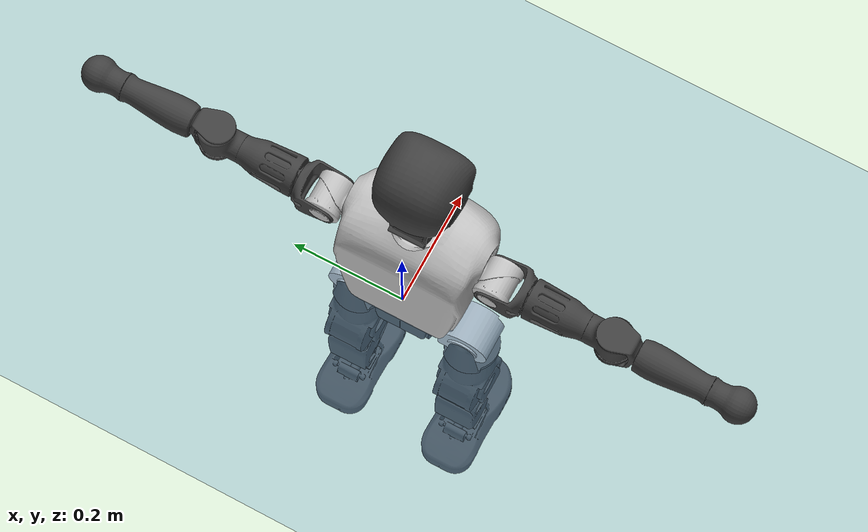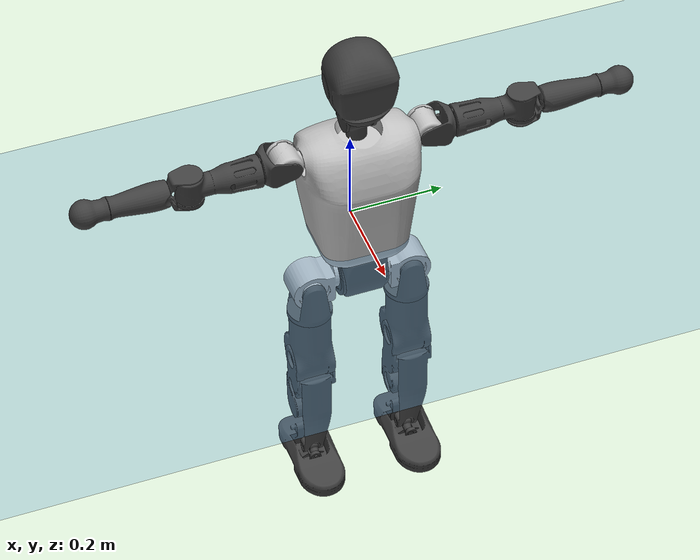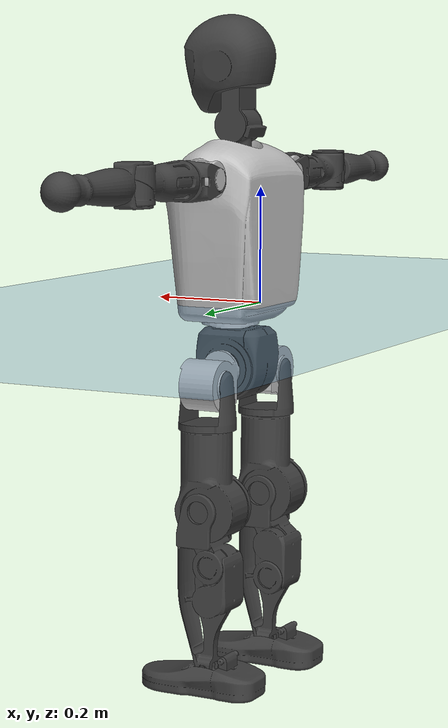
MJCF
<mujoco model="T1">
  <compiler angle="radian" assetdir="assets" balanceinertia="true" inertiafromgeom="false"/>

  <option timestep="0.005" density="1.2" viscosity="2e-05"/>

  <size nkey="1"/>

  <visual>
    <quality shadowsize="8192"/>
    <map shadowclip="0.5"/>
  </visual>

  <default>
    <default class="/">
      <joint armature="0.01" damping="0.01" frictionloss="0.1"/>
      <geom contype="0" conaffinity="0" group="1" solref="-1000 -80"/>
      <site size="0.01 0.005 0.005" group="5"/>
      <general forcelimited="true" biastype="affine" gainprm="25" biasprm="0 -25 -0.6"/>
      <default class="t1">
        <geom rgba="0.25 0.25 0.25 1"/>
        <default class="visual">
          <geom type="mesh" group="2"/>
        </default>
        <default class="collision">
          <geom group="3"/>
        </default>
        <default class="foot">
          <geom size="0.1115 0.05 0.015" type="box" condim="6" group="4" priority="1" solimp="0.015 1 0.015"/>
        </default>
        <default class="reward_collision_sphere">
          <geom group="5" rgba="1 0 0 1"/>
        </default>
      </default>
    </default>
  </default>

  <asset>
    <texture type="skybox" colorspace="auto" name="//unnamed_texture_0" builtin="gradient" rgb1="0.95 0.95 0.95" rgb2="0.95 0.95 0.95" width="100" height="600"/>
    <texture type="2d" colorspace="auto" name="texplane" builtin="checker" rgb1="0.345 0.575 0.748" rgb2="0.345 0.575 0.748" markrgb="1 1 1" width="512" height="512"/>
    <material name="MatPlane" class="/" texture="texplane" texuniform="true" texrepeat="2 2" specular="0.9"/>
    <mesh name="Trunk" class="/" file="Trunk.stl"/>
    <mesh name="H1" class="/" file="H1.stl"/>
    <mesh name="H2" class="/" file="H2.stl"/>
    <mesh name="AL1" class="/" file="AL1.stl"/>
    <mesh name="AL2" class="/" file="AL2.stl"/>
    <mesh name="AL3" class="/" file="AL3.stl"/>
    <mesh name="left_hand_link" class="/" file="left_hand_link.stl"/>
    <mesh name="AR1" class="/" file="AR1.stl"/>
    <mesh name="AR2" class="/" file="AR2.stl"/>
    <mesh name="AR3" class="/" file="AR3.stl"/>
    <mesh name="right_hand_link" class="/" file="right_hand_link.stl"/>
    <mesh name="Waist" class="/" file="Waist.stl"/>
    <mesh name="Hip_Pitch_Left" class="/" file="Hip_Pitch_Left.stl"/>
    <mesh name="Hip_Roll_Left" class="/" file="Hip_Roll_Left.stl"/>
    <mesh name="Hip_Yaw_Left" class="/" file="Hip_Yaw_Left.stl"/>
    <mesh name="Shank_Left" class="/" file="Shank_Left.stl"/>
    <mesh name="Ankle_Cross_Left" class="/" file="Ankle_Cross_Left.stl"/>
    <mesh name="left_foot_link" class="/" file="left_foot_link.stl"/>
    <mesh name="Hip_Pitch_Right" class="/" file="Hip_Pitch_Right.stl"/>
    <mesh name="Hip_Roll_Right" class="/" file="Hip_Roll_Right.stl"/>
    <mesh name="Hip_Yaw_Right" class="/" file="Hip_Yaw_Right.stl"/>
    <mesh name="Shank_Right" class="/" file="Shank_Right.stl"/>
    <mesh name="Ankle_Cross_Right" class="/" file="Ankle_Cross_Right.stl"/>
    <mesh name="right_foot_link" class="/" file="right_foot_link.stl"/>
  </asset>

  <worldbody>
    <geom name="floor" class="/" size="100 100 0.125" type="plane" group="0" material="MatPlane"/>
    <light name="toplight_shadow" class="/" pos="0 0 5" dir="0.0990148 0.0990148 -0.990148" type="directional" ambient="0.04 0.04 0.04" diffuse="0.55 0.55 0.55" specular="0.12 0.12 0.12"/>
    <light name="toplight_fill" class="/" pos="0 0 5" dir="0.0990148 0.0990148 -0.990148" type="directional" castshadow="false" ambient="0.04 0.04 0.04" diffuse="0.3 0.3 0.3" specular="0.08 0.08 0.08"/>
    <body name="trunk" childclass="t1" pos="-0.00238157 -0.00244774 0.00277517" quat="0.999999 0.00049326 -0.00103122 0.000831823">
      <inertial pos="0.0381318 -0.00269234 0.106432" quat="0.999961 0.000143851 -0.00885923 8.61126e-05" mass="8.41617" diaginertia="0.0168693 0.0746423 0.0533808"/>
      <joint name="//unnamed_joint_0" type="free" armature="0" damping="0" frictionloss="0"/>
      <geom name="//unnamed_geom_1" class="visual" rgba="0.76 0.76 0.76 1" mesh="Trunk"/>
      <geom name="//unnamed_geom_2" class="collision" size="0.0670429 0.0893905 0.134086" pos="0.0424808 0 0.118617" type="box"/>
      <geom name="//unnamed_geom_3" class="reward_collision_sphere" size="0.102799" pos="0.0424808 0 0.0988477"/>
      <geom name="//unnamed_geom_4" class="reward_collision_sphere" size="0.0134086" pos="0.0424808 0.0837439 0"/>
      <geom name="//unnamed_geom_5" class="reward_collision_sphere" size="0.0134086" pos="0.0424808 -0.0837439 0"/>
      <geom name="//unnamed_geom_6" class="reward_collision_sphere" size="0.0134086" pos="0.0424808 0.105419 0.177926"/>
      <geom name="//unnamed_geom_7" class="reward_collision_sphere" size="0.0134086" pos="0.0424808 -0.105419 0.177926"/>
      <site name="imu" pos="-0.0141562 -0.00934552 -0.00454284" size="0.00893905"/>
      <camera name="track" pos="0 -1.97045 0" quat="0.707107 0.707107 0 0" mode="trackcom"/>
      <camera name="ego_camera" pos="0.0863777 0 0.41516" quat="-0.5 -0.5 0.5 0.5"/>
      <body name="H1" pos="0.0450005 0.000356122 0.240823" quat="0.999999 -0.000348775 0.00121116 -0.000361163">
        <inertial pos="0.00146938 -0.00212155 0.0595787" quat="0.763997 -0.0160151 0.00159416 0.645019" mass="0.323972" diaginertia="4.33249e-05 0.000216491 0.000137679"/>
        <joint name="AAHead_yaw" pos="0 0 0" axis="0.0085709 0.00121919 0.999963" range="-1.62731 1.56557" armature="0.0102367" damping="0.00823687" frictionloss="0.0771167"/>
        <geom name="//unnamed_geom_8" class="visual" mesh="H1"/>
        <body name="H2" pos="0.00181613 2.76359e-05 0.061725" quat="1 0.000302346 -0.000256527 3.70307e-06">
          <inertial pos="0.0043096 -7.06359e-05 0.0970151" quat="0.988691 0.105679 -0.073238 -0.077188" mass="0.437094" diaginertia="0.000346141 0.00171726 0.00157887"/>
          <joint name="Head_pitch" pos="0 0 0" axis="-0.0116739 -0.999918 0.00519896" range="-1.21959 0.403343" armature="0.00902328" damping="0.0113527" frictionloss="0.0796371"/>
          <geom name="//unnamed_geom_9" class="visual" mesh="H2"/>
          <geom name="//unnamed_geom_10" class="collision" size="0.0715124" pos="0.00708014 0 0.108733"/>
          <geom name="//unnamed_geom_11" class="reward_collision_sphere" size="0.0804514" pos="0.0141603 0 0.0988477"/>
        </body>
      </body>
      <body name="AL1" pos="0.0391512 0.103319 0.216676" quat="1 -0.000118844 -0.000124104 -0.000505696">
        <inertial pos="-0.000990146 0.0453314 -0.00114061" quat="0.50885 0.497143 -0.503784 0.490023" mass="0.37852" diaginertia="0.000245916 0.00121749 0.000276961"/>
        <joint name="Left_Shoulder_Pitch" pos="0 0 0" axis="0.00244982 0.999947 0.010049" stiffness="0.0150397" range="-3.30056 1.17458" armature="0.00840009" damping="0.0121801" frictionloss="0.0872793"/>
        <geom name="//unnamed_geom_12" class="visual" rgba="0.76 0.76 0.76 1" mesh="AL1"/>
        <body name="AL2" pos="0.000273271 0.0448002 -0.00247185" quat="1 -2.32119e-05 5.68819e-05 4.52246e-05">
          <inertial pos="0.0010032 0.0368604 -8.82134e-05" quat="0.487486 0.512579 -0.488625 0.510751" mass="0.113165" diaginertia="7.11911e-05 0.000311096 0.000165334"/>
          <joint name="Left_Shoulder_Roll" pos="0 0 0" axis="-0.999977 0.00673555 -0.000787512" stiffness="0.00201347" range="-1.53786 1.71306" armature="0.00781461" damping="0.00449108" frictionloss="0.0974189"/>
          <geom name="//unnamed_geom_13" class="visual" mesh="AL2"/>
          <body name="AL3" pos="0.00321569 0.0604809 0.00146064" quat="1 0.000601134 0.000196893 -1.41447e-05">
            <inertial pos="-0.000397737 0.0817936 -0.00226135" quat="0.702387 0.711678 0.0080969 0.0100729" mass="0.706472" diaginertia="0.00219747 0.0117815 0.000560018"/>
            <joint name="Left_Elbow_Pitch" pos="0 0 0" axis="-0.00141356 -0.999922 -0.0124315" range="-2.26354 2.2479" armature="0.0097025" damping="0.00236376" frictionloss="0.101088"/>
            <geom name="//unnamed_geom_14" class="visual" mesh="AL3"/>
            <geom name="//unnamed_geom_15" class="collision" size="0.0268171 0.0670429" pos="0 0.0492611 0" quat="0.707105 0.707108 0 0" type="cylinder"/>
            <geom name="//unnamed_geom_16" class="reward_collision_sphere" size="0.0321806"/>
            <body name="left_hand_link" pos="0.0031423 0.144683 -0.000486393" quat="0.999999 -0.00138889 -0.000206213 -4.23182e-05">
              <inertial pos="0.000309817 0.107875 -0.00193758" quat="0.706067 0.708143 -0.00130211 0.000424421" mass="0.241333" diaginertia="0.0014957 0.00754853 0.000204114"/>
              <joint name="Left_Elbow_Yaw" pos="0 0 0" axis="-0.0178611 0.00343877 0.999835" stiffness="0.0107435" range="-2.4477 -0.0130567" armature="0.0083252" damping="0.00892421" frictionloss="0.101991"/>
              <geom name="//unnamed_geom_17" class="visual" mesh="left_hand_link"/>
              <geom name="//unnamed_geom_18" class="collision" size="0.0268171 0.0782167" pos="0 0.128079 0" quat="0.707105 0.707108 0 0" type="cylinder"/>
              <geom name="//unnamed_geom_19" class="reward_collision_sphere" size="0.0446952"/>
              <geom name="//unnamed_geom_20" class="reward_collision_sphere" size="0.0312867" pos="0 0.108374 0"/>
              <geom name="//unnamed_geom_21" class="reward_collision_sphere" size="0.0312867" pos="0 0.211823 0"/>
            </body>
          </body>
        </body>
      </body>
      <body name="AR1" pos="0.0392384 -0.101269 0.216704" quat="0.999999 0.000452236 -0.000220209 -0.000947279">
        <inertial pos="-0.00208329 -0.0461254 0.00157249" quat="0.501696 0.499215 -0.5036 0.495452" mass="0.37934" diaginertia="0.000237246 0.00121691 0.000287404"/>
        <joint name="Right_Shoulder_Pitch" pos="0 0 0" axis="-0.0017612 -0.999997 -0.00180574" stiffness="0.00563216" range="-1.2544 3.31365" armature="0.0076664" damping="0.0158904" frictionloss="0.09187"/>
        <geom name="//unnamed_geom_22" class="visual" rgba="0.76 0.76 0.76 1" mesh="AR1"/>
        <body name="AR2" pos="-0.000349342 -0.0431367 -0.000948738" quat="1 6.02695e-05 0.000242912 -0.000119896">
          <inertial pos="0.00191471 -0.0373772 -0.0012048" quat="0.504622 0.49815 -0.514583 0.482086" mass="0.120232" diaginertia="7.00306e-05 0.000320519 0.000164975"/>
          <joint name="Right_Shoulder_Roll" pos="0 0 0" axis="-1 0.000480252 -0.000710131" stiffness="0.00416529" range="-1.76846 1.60947" armature="0.0089489" damping="0" frictionloss="0.0905494"/>
          <geom name="//unnamed_geom_23" class="visual" mesh="AR2"/>
          <body name="AR3" pos="0.00243461 -0.059036 -0.00367955" quat="1 0.000117594 -0.00028285 0.000255379">
            <inertial pos="0.00176103 -0.0869132 0.0002194" quat="0.706517 0.707696 0.000451042 0.000398758" mass="0.736807" diaginertia="0.00233202 0.0125874 0.000621437"/>
            <joint name="Right_Elbow_Pitch" pos="0 0 0" axis="-0.000848376 0.999949 -0.0100407" range="-2.28246 2.26162" armature="0.00960813" damping="0.00930693" frictionloss="0.0817423"/>
            <geom name="//unnamed_geom_24" class="visual" mesh="AR3"/>
            <geom name="//unnamed_geom_25" class="collision" size="0.0268171 0.0670429" pos="0 -0.0492611 0" quat="0.707105 0.707108 0 0" type="cylinder"/>
            <geom name="//unnamed_geom_26" class="reward_collision_sphere" size="0.0321806"/>
            <body name="right_hand_link" pos="-0.000885158 -0.145549 0.000259499" quat="0.999999 0.000772524 -0.00112823 -0.00031772">
              <inertial pos="-0.00118366 -0.106619 -0.000191211" quat="0.703105 0.711082 0.00235336 0.00060553" mass="0.235154" diaginertia="0.00142726 0.00755524 0.00021104"/>
              <joint name="Right_Elbow_Yaw" pos="0 0 0" axis="-0.00223734 0.00961551 0.999951" range="-0.0331568 2.4579" armature="0.00878273" damping="0" frictionloss="0.0955505"/>
              <geom name="//unnamed_geom_27" class="visual" mesh="right_hand_link"/>
              <geom name="//unnamed_geom_28" class="collision" size="0.0268171 0.0782167" pos="0 -0.128079 0" quat="0.707105 0.707108 0 0" type="cylinder"/>
              <geom name="//unnamed_geom_29" class="reward_collision_sphere" size="0.0446952"/>
              <geom name="//unnamed_geom_30" class="reward_collision_sphere" size="0.0312867" pos="0 -0.108374 0"/>
              <geom name="//unnamed_geom_31" class="reward_collision_sphere" size="0.0312867" pos="0 -0.211823 0"/>
            </body>
          </body>
        </body>
      </body>
      <body name="Waist" pos="0.0479732 0.00095724 -0.114106" quat="0.999999 0.00100396 -0.000497801 0.000103564">
        <inertial pos="0.00216583 -0.00122118 0.0100805" quat="0.983641 0.00335557 -0.179382 0.0161916" mass="1.77765" diaginertia="0.000925593 0.0049742 0.00444713"/>
        <joint name="Waist" pos="0 0 0" axis="-0.0113326 0.00384509 0.999928" stiffness="0.00338487" range="-1.57454 1.59013" armature="0.00991403" damping="0.0180585" frictionloss="0.0794868"/>
        <geom name="//unnamed_geom_32" class="visual" mesh="Waist"/>
        <body name="Hip_Pitch_Left" pos="0.00336011 0.10557 -0.0025823" quat="0.999999 0.00106822 0.000418038 0.000696463">
          <inertial pos="0.00150723 -0.00478769 -0.0197624" quat="0.976059 0.216884 0.0164092 -0.000250005" mass="0.75184" diaginertia="0.000315899 0.00134662 0.0012118"/>
          <joint name="Left_Hip_Pitch" pos="0 0 0" axis="-0.0158784 0.999855 0.0061139" stiffness="0.00482001" range="-1.80866 1.60657" armature="0.00939132" damping="0.00296303" frictionloss="0.0890879"/>
          <geom name="//unnamed_geom_33" class="visual" rgba="0.76 0.76 0.76 1" mesh="Hip_Pitch_Left"/>
          <body name="Hip_Roll_Left" pos="0.000751424 0.00102052 -0.018502" quat="1 -0.00049073 -0.000374441 -0.00026106">
            <inertial pos="-0.00182456 0.00234119 -0.0527346" quat="0.714611 3.28301e-06 -0.0119199 0.699421" mass="0.280203" diaginertia="0.000313351 0.0013617 0.000483659"/>
            <joint name="Left_Hip_Roll" pos="0 0 0" axis="-0.999954 -0.00628932 -0.00717555" range="-1.55778 0.252556" armature="0.00836344" damping="0.0127346" frictionloss="0.0771639"/>
            <geom name="//unnamed_geom_34" class="visual" mesh="Hip_Roll_Left"/>
            <geom name="//unnamed_geom_35" class="reward_collision_sphere" size="0.0491648"/>
            <body name="Hip_Yaw_Left" pos="-0.00173138 0.00182771 -0.0790737" quat="1 -0.000434446 -3.51807e-05 0.000346734">
              <inertial pos="-0.00535759 -0.000498932 -0.0879033" quat="0.692715 -0.0317943 -0.0331222 0.719749" mass="1.44884" diaginertia="0.00442157 0.0226805 0.00230188"/>
              <joint name="Left_Hip_Yaw" pos="0 0 0" axis="0.00510748 -0.00645633 -0.999966" range="-0.951249 0.956087" armature="0.00926951" damping="0.0170189" frictionloss="0.0873598"/>
              <geom name="//unnamed_geom_36" class="visual" mesh="Hip_Yaw_Left"/>
              <geom name="//unnamed_geom_37" class="collision" size="0.0446952 0.0715124" type="cylinder"/>
              <body name="Shank_Left" pos="-0.00586596 0.00122951 -0.13503" quat="1 -0.000160839 0.000541509 0.000229331">
                <inertial pos="-0.0037214 -0.000890331 -0.122707" quat="0.997608 0.000465609 -0.0216017 0.0656637" mass="1.25238" diaginertia="0.00630555 0.0320616 0.00179437"/>
                <joint name="Left_Knee_Pitch" pos="0 0 0" axis="8.7635e-05 0.999992 -0.00387397" stiffness="0.00243946" range="0.0535284 2.33619" armature="0.00977711" damping="0.0251688" frictionloss="0.0899024"/>
                <geom name="//unnamed_geom_38" class="visual" mesh="Shank_Left"/>
                <geom name="//unnamed_geom_39" class="collision" size="0.0446952 0.0670429" pos="0 0 -0.118617" type="cylinder"/>
                <geom name="//unnamed_geom_40" class="reward_collision_sphere" size="0.0581038"/>
                <body name="Ankle_Cross_Left" pos="0.0021419 0.000250877 -0.279695" quat="1 0.00016368 3.74153e-05 8.22828e-05">
                  <inertial pos="-0.0015562 0.000817728 -0.00508469" quat="0.442939 0.551061 0.550757 0.443626" mass="0.050142" diaginertia="5.30127e-06 2.34745e-05 1.07412e-05"/>
                  <joint name="Left_Ankle_Pitch" pos="0 0 0" axis="-0.00342805 0.999979 0.00556556" range="-0.91364 0.328663" armature="0.00913199" damping="0.0115058" frictionloss="0.077548"/>
                  <geom name="//unnamed_geom_41" class="visual" mesh="Ankle_Cross_Left"/>
                  <body name="left_foot_link" pos="0.0010288 0.00245726 -0.0118562" quat="1 -0.000265164 0.000361684 0.000161321">
                    <inertial pos="0.0015451 -0.000607347 -0.0112638" quat="-0.0106049 0.617818 -0.00404203 0.786239" mass="0.511399" diaginertia="0.000498443 0.00228087 0.00206349"/>
                    <joint name="Left_Ankle_Roll" pos="0 0 0" axis="-0.999962 -0.00734892 -0.00473931" range="-0.445261 0.385245" armature="0.00887783" damping="0" frictionloss="0.098973"/>
                    <geom name="//unnamed_geom_42" class="visual" mesh="left_foot_link"/>
                    <geom name="left_foot" class="foot" size="0.108817 0.0401583 0.0132413" pos="0.00708014 0 -0.0148272"/>
                    <geom name="//unnamed_geom_44" class="reward_collision_sphere" size="0.046483" pos="0.00708014 0 -0.0148272"/>
                    <geom name="//unnamed_geom_45" class="reward_collision_sphere" size="0.0268171" pos="0.0672613 -0.0226601 -0.0148272"/>
                    <geom name="//unnamed_geom_46" class="reward_collision_sphere" size="0.0268171" pos="-0.049561 -0.0226601 -0.0148272"/>
                    <site name="left_foot" class="foot" pos="0.00708014 0 -0.0148272" size="0.00893905"/>
                  </body>
                </body>
              </body>
            </body>
          </body>
        </body>
        <body name="Hip_Pitch_Right" pos="-0.00301709 -0.10517 -0.00090836" quat="0.999999 0.00156573 -0.000459667 -0.000198566">
          <inertial pos="-0.0025202 0.00594371 -0.0153535" quat="0.974202 -0.224876 0.0183918 -0.004824" mass="0.737109" diaginertia="0.000329815 0.00140992 0.00121769"/>
          <joint name="Right_Hip_Pitch" pos="0 0 0" axis="0.00697721 -0.999972 0.00270839" range="-1.57373 1.82338" armature="0.00940435" damping="0" frictionloss="0.101485"/>
          <geom name="//unnamed_geom_47" class="visual" rgba="0.76 0.76 0.76 1" mesh="Hip_Pitch_Right"/>
          <body name="Hip_Roll_Right" pos="0.00183445 -0.00096625 -0.0221606" quat="1 0.000133297 -0.000225859 -3.53019e-05">
            <inertial pos="-0.00112684 -0.00302482 -0.0555468" quat="0.709805 -0.0184728 -0.00198566 0.704153" mass="0.285296" diaginertia="0.000310167 0.0014229 0.000476785"/>
            <joint name="Right_Hip_Roll" pos="0 0 0" axis="-1 0.000519483 0.000746169" range="-0.257311 1.56615" armature="0.0102856" damping="0.0115212" frictionloss="0.0770575"/>
            <geom name="//unnamed_geom_48" class="visual" mesh="Hip_Roll_Right"/>
            <geom name="//unnamed_geom_49" class="reward_collision_sphere" size="0.0491648"/>
            <body name="Hip_Yaw_Right" pos="-0.00238032 0.000606635 -0.0818545" quat="1 0.00011365 7.52945e-06 -0.000219201">
              <inertial pos="-0.00461556 -0.00237628 -0.0871299" quat="0.714816 -0.0323524 -0.0326604 0.6978" mass="1.57679" diaginertia="0.00452869 0.0246684 0.00243263"/>
              <joint name="Right_Hip_Yaw" pos="0 0 0" axis="0.00443678 -0.00473662 -0.999979" stiffness="0.00247155" range="-0.997706 1.01373" armature="0.00852752" damping="0" frictionloss="0.0881257"/>
              <geom name="//unnamed_geom_50" class="visual" mesh="Hip_Yaw_Right"/>
              <geom name="//unnamed_geom_51" class="collision" size="0.0446952 0.0715124" type="cylinder"/>
              <body name="Shank_Right" pos="-0.00848544 0.000201094 -0.135134" quat="1 -0.000106141 0.000121375 0.000138937">
                <inertial pos="-0.00313971 -6.31604e-05 -0.11933" quat="0.999251 0.00900236 -0.0151096 -0.0344679" mass="1.29355" diaginertia="0.00634273 0.031952 0.00181091"/>
                <joint name="Right_Knee_Pitch" pos="0 0 0" axis="-0.0004659 -1 -1.91536e-05" range="-2.33662 0.00601378" armature="0.00950861" damping="0.0136756" frictionloss="0.101287"/>
                <geom name="//unnamed_geom_52" class="visual" mesh="Shank_Right"/>
                <geom name="//unnamed_geom_53" class="collision" size="0.0446952 0.0670429" pos="0 0 -0.118617" type="cylinder"/>
                <geom name="//unnamed_geom_54" class="reward_collision_sphere" size="0.0581038"/>
                <body name="Ankle_Cross_Right" pos="0.00321271 0.00130377 -0.277242" quat="1 -0.000258402 0.00036832 -0.000516917">
                  <inertial pos="-0.000754482 0.00290226 -0.00838311" quat="0.438861 0.549447 0.546234 0.455124" mass="0.0505553" diaginertia="5.34071e-06 2.39039e-05 1.03435e-05"/>
                  <joint name="Right_Ankle_Pitch" pos="0 0 0" axis="0.00203974 -0.999996 -0.00172565" range="-0.390226 0.852101" armature="0.00930745" damping="0.0116629" frictionloss="0.0966945"/>
                  <geom name="//unnamed_geom_55" class="visual" mesh="Ankle_Cross_Right"/>
                  <body name="right_foot_link" pos="-0.00053611 -0.00337793 -0.0092579" quat="1 -0.000411479 0.000208515 -5.00869e-05">
                    <inertial pos="0.000957114 -0.000112764 -0.00618844" quat="0.0114397 0.620698 0.00599927 0.783944" mass="0.481692" diaginertia="0.000480629 0.00223475 0.00198719"/>
                    <joint name="Right_Ankle_Roll" pos="0 0 0" axis="-0.999929 0.00218124 -0.0117572" range="-0.44443 0.39624" armature="0.00994003" damping="0.0139965" frictionloss="0.0827991"/>
                    <geom name="//unnamed_geom_56" class="visual" mesh="right_foot_link"/>
                    <geom name="right_foot" class="foot" size="0.103657 0.0393496 0.0120609" pos="0.00708014 0 -0.0148272"/>
                    <geom name="//unnamed_geom_58" class="reward_collision_sphere" size="0.0357562"/>
                    <geom name="//unnamed_geom_59" class="reward_collision_sphere" size="0.0268171" pos="0.00708014 0 -0.0148272"/>
                    <geom name="//unnamed_geom_60" class="reward_collision_sphere" size="0.0268171" pos="0.0672613 0.0226601 -0.0148272"/>
                    <geom name="//unnamed_geom_61" class="reward_collision_sphere" size="0.0268171" pos="-0.049561 0.0226601 -0.0148272"/>
                    <site name="right_foot" class="foot" pos="0.00708014 0 -0.0148272" size="0.00893905"/>
                  </body>
                </body>
              </body>
            </body>
          </body>
        </body>
      </body>
    </body>
  </worldbody>

  <contact>
    <pair class="/" geom1="floor" geom2="left_foot" name="//unnamed_contact_0"/>
    <pair class="/" geom1="floor" geom2="right_foot" name="//unnamed_contact_1"/>
  </contact>

  <actuator>
    <general name="AAHead_yaw" class="/" joint="AAHead_yaw" forcerange="-5.79843 5.79843" gainprm="21.6193" biasprm="0 -21.6193 -0.524536"/>
    <general name="Head_pitch" class="/" joint="Head_pitch" forcerange="-6.76166 6.76166" gainprm="21.6193" biasprm="0 -21.6193 -0.524536"/>
    <general name="Left_Shoulder_Pitch" class="/" joint="Left_Shoulder_Pitch" forcerange="-15.7751 15.7751" gainprm="21.6193" biasprm="0 -21.6193 -0.524536"/>
    <general name="Left_Shoulder_Roll" class="/" joint="Left_Shoulder_Roll" forcerange="-17.293 17.293" gainprm="21.6193" biasprm="0 -21.6193 -0.524536"/>
    <general name="Left_Elbow_Pitch" class="/" joint="Left_Elbow_Pitch" forcerange="-17.6575 17.6575" gainprm="21.6193" biasprm="0 -21.6193 -0.524536"/>
    <general name="Left_Elbow_Yaw" class="/" joint="Left_Elbow_Yaw" forcerange="-16.62 16.62" gainprm="21.6193" biasprm="0 -21.6193 -0.524536"/>
    <general name="Right_Shoulder_Pitch" class="/" joint="Right_Shoulder_Pitch" forcerange="-16.2399 16.2399" gainprm="21.6193" biasprm="0 -21.6193 -0.524536"/>
    <general name="Right_Shoulder_Roll" class="/" joint="Right_Shoulder_Roll" forcerange="-17.6315 17.6315" gainprm="21.6193" biasprm="0 -21.6193 -0.524536"/>
    <general name="Right_Elbow_Pitch" class="/" joint="Right_Elbow_Pitch" forcerange="-17.8309 17.8309" gainprm="21.6193" biasprm="0 -21.6193 -0.524536"/>
    <general name="Right_Elbow_Yaw" class="/" joint="Right_Elbow_Yaw" forcerange="-14.4521 14.4521" gainprm="21.6193" biasprm="0 -21.6193 -0.524536"/>
    <general name="Waist" class="/" joint="Waist" forcerange="-26.9384 26.9384" gainprm="21.6193" biasprm="0 -21.6193 -0.524536"/>
    <general name="Left_Hip_Pitch" class="/" joint="Left_Hip_Pitch" forcerange="-44.4069 44.4069" gainprm="21.6193" biasprm="0 -21.6193 -0.524536"/>
    <general name="Left_Hip_Roll" class="/" joint="Left_Hip_Roll" forcerange="-27.222 27.222" gainprm="21.6193" biasprm="0 -21.6193 -0.524536"/>
    <general name="Left_Hip_Yaw" class="/" joint="Left_Hip_Yaw" forcerange="-28.6562 28.6562" gainprm="21.6193" biasprm="0 -21.6193 -0.524536"/>
    <general name="Left_Knee_Pitch" class="/" joint="Left_Knee_Pitch" forcerange="-53.603 53.603" gainprm="21.6193" biasprm="0 -21.6193 -0.524536"/>
    <general name="Left_Ankle_Pitch" class="/" joint="Left_Ankle_Pitch" forcerange="-18.724 18.724" gainprm="21.6193" biasprm="0 -21.6193 -0.524536"/>
    <general name="Left_Ankle_Roll" class="/" joint="Left_Ankle_Roll" forcerange="-13.4519 13.4519" gainprm="21.6193" biasprm="0 -21.6193 -0.524536"/>
    <general name="Right_Hip_Pitch" class="/" joint="Right_Hip_Pitch" forcerange="-41.8765 41.8765" gainprm="21.6193" biasprm="0 -21.6193 -0.524536"/>
    <general name="Right_Hip_Roll" class="/" joint="Right_Hip_Roll" forcerange="-27.0409 27.0409" gainprm="21.6193" biasprm="0 -21.6193 -0.524536"/>
    <general name="Right_Hip_Yaw" class="/" joint="Right_Hip_Yaw" forcerange="-25.7786 25.7786" gainprm="21.6193" biasprm="0 -21.6193 -0.524536"/>
    <general name="Right_Knee_Pitch" class="/" joint="Right_Knee_Pitch" forcerange="-48.049 48.049" gainprm="21.6193" biasprm="0 -21.6193 -0.524536"/>
    <general name="Right_Ankle_Pitch" class="/" joint="Right_Ankle_Pitch" forcerange="-16.1798 16.1798" gainprm="21.6193" biasprm="0 -21.6193 -0.524536"/>
    <general name="Right_Ankle_Roll" class="/" joint="Right_Ankle_Roll" forcerange="-14.8419 14.8419" gainprm="21.6193" biasprm="0 -21.6193 -0.524536"/>
  </actuator>

  <sensor>
    <gyro site="imu" name="imu_angular_velocity"/>
    <velocimeter site="imu" name="imu_linear_velocity"/>
    <framelinvel objtype="site" objname="left_foot" name="left_foot_global_linear_velocity"/>
    <framelinvel objtype="site" objname="right_foot" name="right_foot_global_linear_velocity"/>
  </sensor>

  <keyframe>
    <key name="home" qpos="0 0 0.6385 1 0 0 0 0 0 0 1.4 0 -0.4 0 -1.4 0 0.4 0 -0.4 0 0 0.8 -0.4 0 0.4 0 0 -0.8 0.4 0"/>
  </keyframe>
</mujoco>
